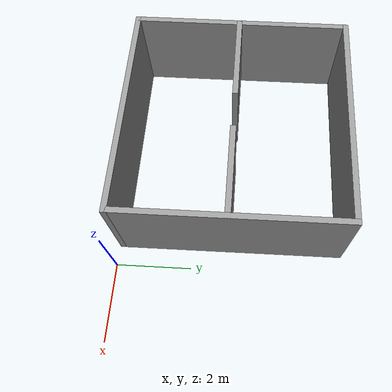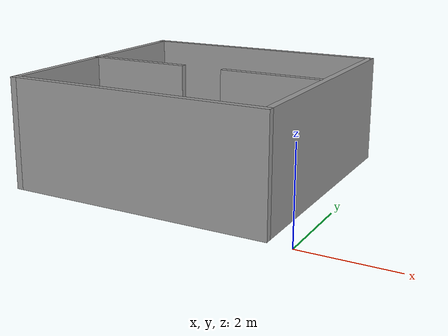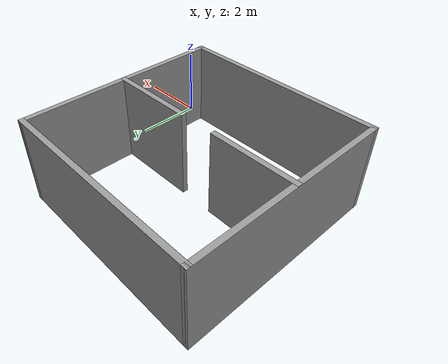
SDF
<?xml version='1.0'?>
<sdf version='1.6'>
  <model name='door_world'>
    <pose frame=''>-3.52027 3.03338 0 0 -0 0</pose>
    <link name='Wall_25'>
      <collision name='Wall_25_Collision'>
        <geometry>
          <box>
            <size>6 0.15 2.5</size>
          </box>
        </geometry>
        <pose frame=''>0 0 1.25 0 -0 0</pose>
      </collision>
      <visual name='Wall_25_Visual'>
        <pose frame=''>0 0 1.25 0 -0 0</pose>
        <geometry>
          <box>
            <size>6 0.15 2.5</size>
          </box>
        </geometry>
        <material>
          <script>
            <uri>file://media/materials/scripts/gazebo.material</uri>
            <name>Gazebo/Grey</name>
          </script>
          <ambient>1 1 1 1</ambient>
        </material>
        <meta>
          <layer>0</layer>
        </meta>
      </visual>
      <pose frame=''>2.925 0 0 0 0 -1.5708</pose>
    </link>
    <link name='Wall_26'>
      <collision name='Wall_26_Collision'>
        <geometry>
          <box>
            <size>6 0.15 2.5</size>
          </box>
        </geometry>
        <pose frame=''>0 0 1.25 0 -0 0</pose>
      </collision>
      <visual name='Wall_26_Visual'>
        <pose frame=''>0 0 1.25 0 -0 0</pose>
        <geometry>
          <box>
            <size>6 0.15 2.5</size>
          </box>
        </geometry>
        <material>
          <script>
            <uri>file://media/materials/scripts/gazebo.material</uri>
            <name>Gazebo/Grey</name>
          </script>
          <ambient>1 1 1 1</ambient>
        </material>
        <meta>
          <layer>0</layer>
        </meta>
      </visual>
      <pose frame=''>0 -2.925 0 0 -0 3.14159</pose>
    </link>
    <link name='Wall_27'>
      <collision name='Wall_27_Collision'>
        <geometry>
          <box>
            <size>6 0.15 2.5</size>
          </box>
        </geometry>
        <pose frame=''>0 0 1.25 0 -0 0</pose>
      </collision>
      <visual name='Wall_27_Visual'>
        <pose frame=''>0 0 1.25 0 -0 0</pose>
        <geometry>
          <box>
            <size>6 0.15 2.5</size>
          </box>
        </geometry>
        <material>
          <script>
            <uri>file://media/materials/scripts/gazebo.material</uri>
            <name>Gazebo/Grey</name>
          </script>
          <ambient>1 1 1 1</ambient>
        </material>
        <meta>
          <layer>0</layer>
        </meta>
      </visual>
      <pose frame=''>-2.925 0 0 0 -0 1.5708</pose>
    </link>
    <link name='Wall_28'>
      <collision name='Wall_28_Collision'>
        <geometry>
          <box>
            <size>6 0.15 2.5</size>
          </box>
        </geometry>
        <pose frame=''>0 0 1.25 0 -0 0</pose>
      </collision>
      <visual name='Wall_28_Visual'>
        <pose frame=''>0 0 1.25 0 -0 0</pose>
        <geometry>
          <box>
            <size>6 0.15 2.5</size>
          </box>
        </geometry>
        <material>
          <script>
            <uri>file://media/materials/scripts/gazebo.material</uri>
            <name>Gazebo/Grey</name>
          </script>
          <ambient>1 1 1 1</ambient>
        </material>
        <meta>
          <layer>0</layer>
        </meta>
      </visual>
      <pose frame=''>0 2.925 0 0 -0 0</pose>
    </link>
    <link name='Wall_30'>
      <collision name='Wall_30_Collision'>
        <geometry>
          <box>
            <size>2.5 0.15 2.5</size>
          </box>
        </geometry>
        <pose frame=''>0 0 1.25 0 -0 0</pose>
      </collision>
      <visual name='Wall_30_Visual'>
        <pose frame=''>0 0 1.25 0 -0 0</pose>
        <geometry>
          <box>
            <size>2.5 0.15 2.5</size>
          </box>
        </geometry>
        <material>
          <script>
            <uri>file://media/materials/scripts/gazebo.material</uri>
            <name>Gazebo/Grey</name>
          </script>
          <ambient>1 1 1 1</ambient>
        </material>
        <meta>
          <layer>0</layer>
        </meta>
      </visual>
      <pose frame=''>-1.742 -0.0535 0 0 -0 0</pose>
    </link>
    <link name='Wall_32'>
      <collision name='Wall_32_Collision'>
        <geometry>
          <box>
            <size>2.5 0.15 2.5</size>
          </box>
        </geometry>
        <pose frame=''>0 0 1.25 0 -0 0</pose>
      </collision>
      <visual name='Wall_32_Visual'>
        <pose frame=''>0 0 1.25 0 -0 0</pose>
        <geometry>
          <box>
            <size>2.5 0.15 2.5</size>
          </box>
        </geometry>
        <material>
          <script>
            <uri>file://media/materials/scripts/gazebo.material</uri>
            <name>Gazebo/Grey</name>
          </script>
          <ambient>1 1 1 1</ambient>
        </material>
        <meta>
          <layer>0</layer>
        </meta>
      </visual>
      <pose frame=''>1.7425 -0.0535 0 0 -0 0</pose>
    </link>
    <static>1</static>
  </model>
</sdf>
